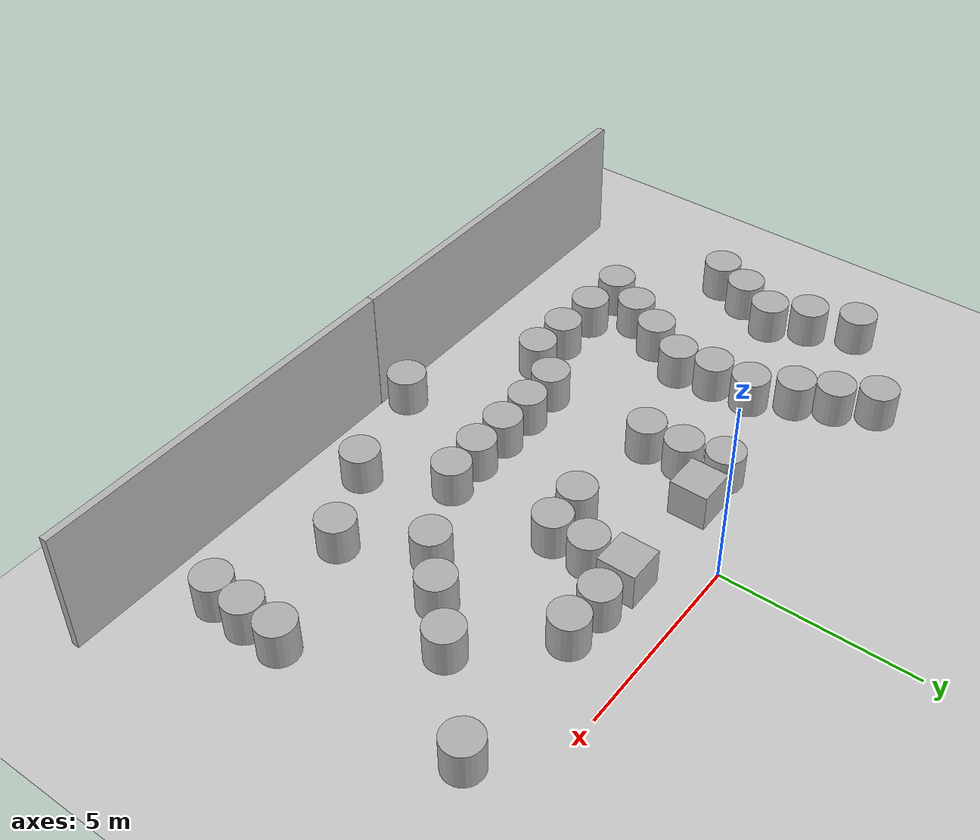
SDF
<sdf version="1.10">
 <world name="empty">
  <model name="ground_plane">
   <static>true</static>
   <link name="link">
    <collision name="collision">
     <geometry><plane><normal>0 0 1</normal><size>100 100</size></plane></geometry>
    </collision>
    <visual name="visual">
     <geometry><plane><normal>0 0 1</normal><size>100 100</size></plane></geometry>
     <material>
      <ambient>0.800000012 0.800000012 0.800000012 1</ambient>
      <diffuse>0.800000012 0.800000012 0.800000012 1</diffuse>
      <specular>0.800000012 0.800000012 0.800000012 1</specular>
     </material>
    </visual>
    <inertial>
     <mass>1</mass>
     <inertia><ixx>1</ixx><ixy>0</ixy><ixz>0</ixz><iyy>1</iyy><iyz>0</iyz><izz>1</izz></inertia>
    </inertial>
   </link>
  </model>
  <model name="cutout_wall">
   <static>true</static>
   <link name="link">
    <pose>0 0 1.3999999999999999 0 0 0</pose>
    <collision name="collision">
     <geometry><box><size>10 0.20000000000000001 3.7999999999999998</size></box></geometry>
     <surface>
      <contact>
       <collide_without_contact>true</collide_without_contact>
       <collide_without_contact_bitmask>2</collide_without_contact_bitmask>
      </contact>
     </surface>
    </collision>
    <visual name="visual">
     <cast_shadows>false</cast_shadows>
     <geometry><box><size>10 0.20000000000000001 3.7999999999999998</size></box></geometry>
     <material>
      <script>
       <uri>https://fuel.gazebosim.org/1.0/openrobotics/models/cutout wall/2/files/materials/scripts</uri>
       <uri>https://fuel.gazebosim.org/1.0/openrobotics/models/cutout wall/2/files/materials/textures</uri>
       <name>drc_practice/cutout_wall</name>
      </script>
     </material>
    </visual>
    <sensor name="mud_contact" type="contact">
     <always_on>true</always_on>
     <update_rate>1000</update_rate>
     <contact><collision>collision</collision><topic>__default_topic__</topic></contact>
    </sensor>
    <inertial>
     <mass>1</mass>
     <inertia><ixx>1</ixx><ixy>0</ixy><ixz>0</ixz><iyy>1</iyy><iyz>0</iyz><izz>1</izz></inertia>
    </inertial>
   </link>
   <plugin name="gazebo_mud" filename="libMudPlugin.so">
    <contact_sensor_name>link/mud_contact</contact_sensor_name>
    <stiffness>0.0</stiffness>
    <damping>40.0</damping>
    <contact_surface_bitmask>2</contact_surface_bitmask>
    <link_name>drill::link</link_name>
   </plugin>
   <pose>5.0244002342224121 -10.112856864929199 0 0 0 0</pose>
  </model>
  <model name="cutout_wall_0">
   <static>true</static>
   <link name="link">
    <pose>0 0 1.3999999999999999 0 0 0</pose>
    <collision name="collision">
     <geometry><box><size>10 0.20000000000000001 3.7999999999999998</size></box></geometry>
     <surface>
      <contact>
       <collide_without_contact>true</collide_without_contact>
       <collide_without_contact_bitmask>2</collide_without_contact_bitmask>
      </contact>
     </surface>
    </collision>
    <visual name="visual">
     <cast_shadows>false</cast_shadows>
     <geometry><box><size>10 0.20000000000000001 3.7999999999999998</size></box></geometry>
     <material>
      <script>
       <uri>https://fuel.gazebosim.org/1.0/openrobotics/models/cutout wall/2/files/materials/scripts</uri>
       <uri>https://fuel.gazebosim.org/1.0/openrobotics/models/cutout wall/2/files/materials/textures</uri>
       <name>drc_practice/cutout_wall</name>
      </script>
     </material>
    </visual>
    <sensor name="mud_contact" type="contact">
     <always_on>true</always_on>
     <update_rate>1000</update_rate>
     <contact><collision>collision</collision><topic>__default_topic__</topic></contact>
    </sensor>
    <inertial>
     <mass>1</mass>
     <inertia><ixx>1</ixx><ixy>0</ixy><ixz>0</ixz><iyy>1</iyy><iyz>0</iyz><izz>1</izz></inertia>
    </inertial>
   </link>
   <plugin name="gazebo_mud" filename="libMudPlugin.so">
    <contact_sensor_name>link/mud_contact</contact_sensor_name>
    <stiffness>0.0</stiffness>
    <damping>40.0</damping>
    <contact_surface_bitmask>2</contact_surface_bitmask>
    <link_name>drill::link</link_name>
   </plugin>
   <pose>-4.9628870537703635 -10.110187173626739 0 0 0 0</pose>
  </model>
  <model name="box_1">
   <pose>1.4997400045394897 -1.5082093477249146 0.49999999990199806 1.1517320518191673e-20 -1.1977566054568141e-20 -1.0673802548937443e-22</pose>
   <link name="box_link">
    <inertial>
     <inertia><ixx>0.16666</ixx><ixy>0</ixy><ixz>0</ixz><iyy>0.16666</iyy><iyz>0</iyz><izz>0.16666</izz></inertia>
     <mass>1</mass>
    </inertial>
    <collision name="box_collision"><geometry><box><size>1 1 1</size></box></geometry></collision>
    <visual name="box_visual">
     <geometry><box><size>1 1 1</size></box></geometry>
     <material>
      <ambient>0.300000012 0.300000012 0.300000012 1</ambient>
      <diffuse>0.699999988 0.699999988 0.699999988 1</diffuse>
      <specular>1 1 1 1</specular>
     </material>
    </visual>
   </link>
   <static>false</static>
  </model>
  <model name="box_2">
   <pose>-1.5103000402450562 -1.5050537586212158 0.49999999990199806 4.9253351279714187e-21 -3.9229219127948056e-21 -1.1103967100794144e-21</pose>
   <link name="box_link">
    <inertial>
     <inertia><ixx>0.16666</ixx><ixy>0</ixy><ixz>0</ixz><iyy>0.16666</iyy><iyz>0</iyz><izz>0.16666</izz></inertia>
     <mass>1</mass>
    </inertial>
    <collision name="box_collision"><geometry><box><size>1 1 1</size></box></geometry></collision>
    <visual name="box_visual">
     <geometry><box><size>1 1 1</size></box></geometry>
     <material>
      <ambient>0.300000012 0.300000012 0.300000012 1</ambient>
      <diffuse>0.699999988 0.699999988 0.699999988 1</diffuse>
      <specular>1 1 1 1</specular>
     </material>
    </visual>
   </link>
   <static>false</static>
  </model>
  <model name="cylinder_24">
   <pose>7.4579679743214129 -1.4635169595611899 0.49999942638036005 1.0404121543791637e-19 3.6597615079895941e-20 1.8234863927649828e-20</pose>
   <link name="cylinder_link">
    <inertial>
     <inertia>
      <ixx>0.14580000000000001</ixx>
      <ixy>0</ixy>
      <ixz>0</ixz>
      <iyy>0.14580000000000001</iyy>
      <iyz>0</iyz>
      <izz>0.125</izz>
     </inertia>
     <mass>1</mass>
    </inertial>
    <collision name="cylinder_collision">
     <geometry><cylinder><radius>0.5</radius><length>1</length></cylinder></geometry>
    </collision>
    <visual name="cylinder_visual">
     <geometry><cylinder><radius>0.5</radius><length>1</length></cylinder></geometry>
     <material>
      <ambient>0.300000012 0.300000012 0.300000012 1</ambient>
      <diffuse>0.699999988 0.699999988 0.699999988 1</diffuse>
      <specular>1 1 1 1</specular>
     </material>
    </visual>
   </link>
   <static>false</static>
  </model>
  <model name="cylinder_25">
   <pose>5.5018903763678519 -3.4989337276191517 0.49999942638036005 1.4860132144114843e-19 1.7661039450246635e-19 4.0893450691587339e-21</pose>
   <link name="cylinder_link">
    <inertial>
     <inertia>
      <ixx>0.14580000000000001</ixx>
      <ixy>0</ixy>
      <ixz>0</ixz>
      <iyy>0.14580000000000001</iyy>
      <iyz>0</iyz>
      <izz>0.125</izz>
     </inertia>
     <mass>1</mass>
    </inertial>
    <collision name="cylinder_collision">
     <geometry><cylinder><radius>0.5</radius><length>1</length></cylinder></geometry>
    </collision>
    <visual name="cylinder_visual">
     <geometry><cylinder><radius>0.5</radius><length>1</length></cylinder></geometry>
     <material>
      <ambient>0.300000012 0.300000012 0.300000012 1</ambient>
      <diffuse>0.699999988 0.699999988 0.699999988 1</diffuse>
      <specular>1 1 1 1</specular>
     </material>
    </visual>
   </link>
   <static>false</static>
  </model>
  <model name="cylinder_26">
   <pose>7.4913997650146484 -6.4739174842834473 0.49999899681693183 -1.6107873630028886e-19 -1.3158036878917675e-19 -6.9647624872487262e-21</pose>
   <link name="cylinder_link">
    <inertial>
     <inertia>
      <ixx>0.14580000000000001</ixx>
      <ixy>0</ixy>
      <ixz>0</ixz>
      <iyy>0.14580000000000001</iyy>
      <iyz>0</iyz>
      <izz>0.125</izz>
     </inertia>
     <mass>1</mass>
    </inertial>
    <collision name="cylinder_collision">
     <geometry><cylinder><radius>0.5</radius><length>1</length></cylinder></geometry>
    </collision>
    <visual name="cylinder_visual">
     <geometry><cylinder><radius>0.5</radius><length>1</length></cylinder></geometry>
     <material>
      <ambient>0.300000012 0.300000012 0.300000012 1</ambient>
      <diffuse>0.699999988 0.699999988 0.699999988 1</diffuse>
      <specular>1 1 1 1</specular>
     </material>
    </visual>
   </link>
   <static>false</static>
  </model>
  <model name="cylinder_27">
   <pose>4.5036947868113426 -7.4734161285770995 0.49999942638036005 4.5825536641846892e-19 -7.7492820516809437e-20 7.7745020133747469e-21</pose>
   <link name="cylinder_link">
    <inertial>
     <inertia>
      <ixx>0.14580000000000001</ixx>
      <ixy>0</ixy>
      <ixz>0</ixz>
      <iyy>0.14580000000000001</iyy>
      <iyz>0</iyz>
      <izz>0.125</izz>
     </inertia>
     <mass>1</mass>
    </inertial>
    <collision name="cylinder_collision">
     <geometry><cylinder><radius>0.5</radius><length>1</length></cylinder></geometry>
    </collision>
    <visual name="cylinder_visual">
     <geometry><cylinder><radius>0.5</radius><length>1</length></cylinder></geometry>
     <material>
      <ambient>0.300000012 0.300000012 0.300000012 1</ambient>
      <diffuse>0.699999988 0.699999988 0.699999988 1</diffuse>
      <specular>1 1 1 1</specular>
     </material>
    </visual>
   </link>
   <static>false</static>
  </model>
  <model name="cylinder_28">
   <pose>7.404863327792464 -8.4644145675349485 0.49999997297122245 -3.5262700033126905e-07 1.4435802526447565e-07 0.00094128847841023924</pose>
   <link name="cylinder_link">
    <inertial>
     <inertia>
      <ixx>0.14580000000000001</ixx>
      <ixy>0</ixy>
      <ixz>0</ixz>
      <iyy>0.14580000000000001</iyy>
      <iyz>0</iyz>
      <izz>0.125</izz>
     </inertia>
     <mass>1</mass>
    </inertial>
    <collision name="cylinder_collision">
     <geometry><cylinder><radius>0.5</radius><length>1</length></cylinder></geometry>
    </collision>
    <visual name="cylinder_visual">
     <geometry><cylinder><radius>0.5</radius><length>1</length></cylinder></geometry>
     <material>
      <ambient>0.300000012 0.300000012 0.300000012 1</ambient>
      <diffuse>0.699999988 0.699999988 0.699999988 1</diffuse>
      <specular>1 1 1 1</specular>
     </material>
    </visual>
   </link>
   <static>false</static>
  </model>
  <model name="cylinder_29">
   <pose>7.4653034075764992 -7.4820488905984313 0.49999414175929674 -2.6838842488045363e-06 -4.6486356529296626e-07 0.0016932280995456796</pose>
   <link name="cylinder_link">
    <inertial>
     <inertia>
      <ixx>0.14580000000000001</ixx>
      <ixy>0</ixy>
      <ixz>0</ixz>
      <iyy>0.14580000000000001</iyy>
      <iyz>0</iyz>
      <izz>0.125</izz>
     </inertia>
     <mass>1</mass>
    </inertial>
    <collision name="cylinder_collision">
     <geometry><cylinder><radius>0.5</radius><length>1</length></cylinder></geometry>
    </collision>
    <visual name="cylinder_visual">
     <geometry><cylinder><radius>0.5</radius><length>1</length></cylinder></geometry>
     <material>
      <ambient>0.300000012 0.300000012 0.300000012 1</ambient>
      <diffuse>0.699999988 0.699999988 0.699999988 1</diffuse>
      <specular>1 1 1 1</specular>
     </material>
    </visual>
   </link>
   <static>false</static>
  </model>
  <model name="cylinder_30">
   <pose>3.5181975875642597 -5.4882700601763243 0.49999942638036005 -9.0263386896251064e-20 1.227965443005862e-19 -6.4139063919702918e-21</pose>
   <link name="cylinder_link">
    <inertial>
     <inertia>
      <ixx>0.14580000000000001</ixx>
      <ixy>0</ixy>
      <ixz>0</ixz>
      <iyy>0.14580000000000001</iyy>
      <iyz>0</iyz>
      <izz>0.125</izz>
     </inertia>
     <mass>1</mass>
    </inertial>
    <collision name="cylinder_collision">
     <geometry><cylinder><radius>0.5</radius><length>1</length></cylinder></geometry>
    </collision>
    <visual name="cylinder_visual">
     <geometry><cylinder><radius>0.5</radius><length>1</length></cylinder></geometry>
     <material>
      <ambient>0.300000012 0.300000012 0.300000012 1</ambient>
      <diffuse>0.699999988 0.699999988 0.699999988 1</diffuse>
      <specular>1 1 1 1</specular>
     </material>
    </visual>
   </link>
   <static>false</static>
  </model>
  <model name="cylinder_31">
   <pose>2.4567228461091841 -8.5414870793526454 0.49999942638036005 2.5504988768588672e-19 6.5733350619232242e-20 -5.8407872868714071e-21</pose>
   <link name="cylinder_link">
    <inertial>
     <inertia>
      <ixx>0.14580000000000001</ixx>
      <ixy>0</ixy>
      <ixz>0</ixz>
      <iyy>0.14580000000000001</iyy>
      <iyz>0</iyz>
      <izz>0.125</izz>
     </inertia>
     <mass>1</mass>
    </inertial>
    <collision name="cylinder_collision">
     <geometry><cylinder><radius>0.5</radius><length>1</length></cylinder></geometry>
    </collision>
    <visual name="cylinder_visual">
     <geometry><cylinder><radius>0.5</radius><length>1</length></cylinder></geometry>
     <material>
      <ambient>0.300000012 0.300000012 0.300000012 1</ambient>
      <diffuse>0.699999988 0.699999988 0.699999988 1</diffuse>
      <specular>1 1 1 1</specular>
     </material>
    </visual>
   </link>
   <static>false</static>
  </model>
  <model name="cylinder_32">
   <pose>1.4836808308464846 -6.5152958040956168 0.49999942638036005 1.8706455609397484e-19 -4.394916380758869e-19 6.1073173625950871e-21</pose>
   <link name="cylinder_link">
    <inertial>
     <inertia>
      <ixx>0.14580000000000001</ixx>
      <ixy>0</ixy>
      <ixz>0</ixz>
      <iyy>0.14580000000000001</iyy>
      <iyz>0</iyz>
      <izz>0.125</izz>
     </inertia>
     <mass>1</mass>
    </inertial>
    <collision name="cylinder_collision">
     <geometry><cylinder><radius>0.5</radius><length>1</length></cylinder></geometry>
    </collision>
    <visual name="cylinder_visual">
     <geometry><cylinder><radius>0.5</radius><length>1</length></cylinder></geometry>
     <material>
      <ambient>0.300000012 0.300000012 0.300000012 1</ambient>
      <diffuse>0.699999988 0.699999988 0.699999988 1</diffuse>
      <specular>1 1 1 1</specular>
     </material>
    </visual>
   </link>
   <static>false</static>
  </model>
  <model name="cylinder_33">
   <pose>1.4988005276540712 -2.5632170485841277 0.49999942638036005 1.1352717714565005e-19 1.3222497010475083e-19 1.2599571809446981e-20</pose>
   <link name="cylinder_link">
    <inertial>
     <inertia>
      <ixx>0.14580000000000001</ixx>
      <ixy>0</ixy>
      <ixz>0</ixz>
      <iyy>0.14580000000000001</iyy>
      <iyz>0</iyz>
      <izz>0.125</izz>
     </inertia>
     <mass>1</mass>
    </inertial>
    <collision name="cylinder_collision">
     <geometry><cylinder><radius>0.5</radius><length>1</length></cylinder></geometry>
    </collision>
    <visual name="cylinder_visual">
     <geometry><cylinder><radius>0.5</radius><length>1</length></cylinder></geometry>
     <material>
      <ambient>0.300000012 0.300000012 0.300000012 1</ambient>
      <diffuse>0.699999988 0.699999988 0.699999988 1</diffuse>
      <specular>1 1 1 1</specular>
     </material>
    </visual>
   </link>
   <static>false</static>
  </model>
  <model name="cylinder_34">
   <pose>2.5982537141017641 -1.5151636730561524 0.49999942638036005 -1.7351388523841535e-19 5.5625022594761692e-20 -2.5965143220246563e-21</pose>
   <link name="cylinder_link">
    <inertial>
     <inertia>
      <ixx>0.14580000000000001</ixx>
      <ixy>0</ixy>
      <ixz>0</ixz>
      <iyy>0.14580000000000001</iyy>
      <iyz>0</iyz>
      <izz>0.125</izz>
     </inertia>
     <mass>1</mass>
    </inertial>
    <collision name="cylinder_collision">
     <geometry><cylinder><radius>0.5</radius><length>1</length></cylinder></geometry>
    </collision>
    <visual name="cylinder_visual">
     <geometry><cylinder><radius>0.5</radius><length>1</length></cylinder></geometry>
     <material>
      <ambient>0.300000012 0.300000012 0.300000012 1</ambient>
      <diffuse>0.699999988 0.699999988 0.699999988 1</diffuse>
      <specular>1 1 1 1</specular>
     </material>
    </visual>
   </link>
   <static>false</static>
  </model>
  <model name="cylinder_35">
   <pose>3.6352396272639154 -1.5871415900589758 0.49999942638036005 2.7912113488755255e-19 2.3054390331751714e-19 -1.371123595140014e-20</pose>
   <link name="cylinder_link">
    <inertial>
     <inertia>
      <ixx>0.14580000000000001</ixx>
      <ixy>0</ixy>
      <ixz>0</ixz>
      <iyy>0.14580000000000001</iyy>
      <iyz>0</iyz>
      <izz>0.125</izz>
     </inertia>
     <mass>1</mass>
    </inertial>
    <collision name="cylinder_collision">
     <geometry><cylinder><radius>0.5</radius><length>1</length></cylinder></geometry>
    </collision>
    <visual name="cylinder_visual">
     <geometry><cylinder><radius>0.5</radius><length>1</length></cylinder></geometry>
     <material>
      <ambient>0.300000012 0.300000012 0.300000012 1</ambient>
      <diffuse>0.699999988 0.699999988 0.699999988 1</diffuse>
      <specular>1 1 1 1</specular>
     </material>
    </visual>
   </link>
   <static>false</static>
  </model>
  <model name="cylinder_36">
   <pose>4.4832683135535412 -4.5509423094535553 0.49999942638036005 7.2649451183577797e-20 -4.8473965762629511e-20 7.0300260481472819e-21</pose>
   <link name="cylinder_link">
    <inertial>
     <inertia>
      <ixx>0.14580000000000001</ixx>
      <ixy>0</ixy>
      <ixz>0</ixz>
      <iyy>0.14580000000000001</iyy>
      <iyz>0</iyz>
      <izz>0.125</izz>
     </inertia>
     <mass>1</mass>
    </inertial>
    <collision name="cylinder_collision">
     <geometry><cylinder><radius>0.5</radius><length>1</length></cylinder></geometry>
    </collision>
    <visual name="cylinder_visual">
     <geometry><cylinder><radius>0.5</radius><length>1</length></cylinder></geometry>
     <material>
      <ambient>0.300000012 0.300000012 0.300000012 1</ambient>
      <diffuse>0.699999988 0.699999988 0.699999988 1</diffuse>
      <specular>1 1 1 1</specular>
     </material>
    </visual>
   </link>
   <static>false</static>
  </model>
  <model name="cylinder_37">
   <pose>1.4318604379295714 -3.6028194224507994 0.49999942638036005 7.4099042318196404e-20 5.5378451692048979e-20 -1.2954720819263041e-20</pose>
   <link name="cylinder_link">
    <inertial>
     <inertia>
      <ixx>0.14580000000000001</ixx>
      <ixy>0</ixy>
      <ixz>0</ixz>
      <iyy>0.14580000000000001</iyy>
      <iyz>0</iyz>
      <izz>0.125</izz>
     </inertia>
     <mass>1</mass>
    </inertial>
    <collision name="cylinder_collision">
     <geometry><cylinder><radius>0.5</radius><length>1</length></cylinder></geometry>
    </collision>
    <visual name="cylinder_visual">
     <geometry><cylinder><radius>0.5</radius><length>1</length></cylinder></geometry>
     <material>
      <ambient>0.300000012 0.300000012 0.300000012 1</ambient>
      <diffuse>0.699999988 0.699999988 0.699999988 1</diffuse>
      <specular>1 1 1 1</specular>
     </material>
    </visual>
   </link>
   <static>false</static>
  </model>
  <model name="cylinder_38">
   <pose>0.4701120445519768 -6.5480743106443633 0.49999942638036005 4.1439297792588681e-19 4.8641858540403024e-19 2.7303903312444181e-20</pose>
   <link name="cylinder_link">
    <inertial>
     <inertia>
      <ixx>0.14580000000000001</ixx>
      <ixy>0</ixy>
      <ixz>0</ixz>
      <iyy>0.14580000000000001</iyy>
      <iyz>0</iyz>
      <izz>0.125</izz>
     </inertia>
     <mass>1</mass>
    </inertial>
    <collision name="cylinder_collision">
     <geometry><cylinder><radius>0.5</radius><length>1</length></cylinder></geometry>
    </collision>
    <visual name="cylinder_visual">
     <geometry><cylinder><radius>0.5</radius><length>1</length></cylinder></geometry>
     <material>
      <ambient>0.300000012 0.300000012 0.300000012 1</ambient>
      <diffuse>0.699999988 0.699999988 0.699999988 1</diffuse>
      <specular>1 1 1 1</specular>
     </material>
    </visual>
   </link>
   <static>false</static>
  </model>
  <model name="cylinder_39">
   <pose>-0.39289321029540758 -9.4703206059036553 0.49999942638036005 -1.0612329675700295e-19 -3.1560568702048225e-19 6.0230042435980867e-21</pose>
   <link name="cylinder_link">
    <inertial>
     <inertia>
      <ixx>0.14580000000000001</ixx>
      <ixy>0</ixy>
      <ixz>0</ixz>
      <iyy>0.14580000000000001</iyy>
      <iyz>0</iyz>
      <izz>0.125</izz>
     </inertia>
     <mass>1</mass>
    </inertial>
    <collision name="cylinder_collision">
     <geometry><cylinder><radius>0.5</radius><length>1</length></cylinder></geometry>
    </collision>
    <visual name="cylinder_visual">
     <geometry><cylinder><radius>0.5</radius><length>1</length></cylinder></geometry>
     <material>
      <ambient>0.300000012 0.300000012 0.300000012 1</ambient>
      <diffuse>0.699999988 0.699999988 0.699999988 1</diffuse>
      <specular>1 1 1 1</specular>
     </material>
    </visual>
   </link>
   <static>false</static>
  </model>
  <model name="cylinder_40">
   <pose>-0.55864247399234923 -6.5343551494490271 0.49999942638036005 4.0541481752841836e-19 -1.7716716103474124e-19 -8.9936384247304861e-21</pose>
   <link name="cylinder_link">
    <inertial>
     <inertia>
      <ixx>0.14580000000000001</ixx>
      <ixy>0</ixy>
      <ixz>0</ixz>
      <iyy>0.14580000000000001</iyy>
      <iyz>0</iyz>
      <izz>0.125</izz>
     </inertia>
     <mass>1</mass>
    </inertial>
    <collision name="cylinder_collision">
     <geometry><cylinder><radius>0.5</radius><length>1</length></cylinder></geometry>
    </collision>
    <visual name="cylinder_visual">
     <geometry><cylinder><radius>0.5</radius><length>1</length></cylinder></geometry>
     <material>
      <ambient>0.300000012 0.300000012 0.300000012 1</ambient>
      <diffuse>0.699999988 0.699999988 0.699999988 1</diffuse>
      <specular>1 1 1 1</specular>
     </material>
    </visual>
   </link>
   <static>false</static>
  </model>
  <model name="cylinder_41">
   <pose>-1.5909876523756719 -6.549522709019417 0.49999942638036005 -2.723644736422706e-19 -4.2175234747128296e-20 1.0337401582250631e-20</pose>
   <link name="cylinder_link">
    <inertial>
     <inertia>
      <ixx>0.14580000000000001</ixx>
      <ixy>0</ixy>
      <ixz>0</ixz>
      <iyy>0.14580000000000001</iyy>
      <iyz>0</iyz>
      <izz>0.125</izz>
     </inertia>
     <mass>1</mass>
    </inertial>
    <collision name="cylinder_collision">
     <geometry><cylinder><radius>0.5</radius><length>1</length></cylinder></geometry>
    </collision>
    <visual name="cylinder_visual">
     <geometry><cylinder><radius>0.5</radius><length>1</length></cylinder></geometry>
     <material>
      <ambient>0.300000012 0.300000012 0.300000012 1</ambient>
      <diffuse>0.699999988 0.699999988 0.699999988 1</diffuse>
      <specular>1 1 1 1</specular>
     </material>
    </visual>
   </link>
   <static>false</static>
  </model>
  <model name="cylinder_42">
   <pose>-2.6606234614555997 -6.604773553741321 0.49999942638036005 2.7798991432306755e-19 -2.6032469691397042e-19 2.1424046912927031e-20</pose>
   <link name="cylinder_link">
    <inertial>
     <inertia>
      <ixx>0.14580000000000001</ixx>
      <ixy>0</ixy>
      <ixz>0</ixz>
      <iyy>0.14580000000000001</iyy>
      <iyz>0</iyz>
      <izz>0.125</izz>
     </inertia>
     <mass>1</mass>
    </inertial>
    <collision name="cylinder_collision">
     <geometry><cylinder><radius>0.5</radius><length>1</length></cylinder></geometry>
    </collision>
    <visual name="cylinder_visual">
     <geometry><cylinder><radius>0.5</radius><length>1</length></cylinder></geometry>
     <material>
      <ambient>0.300000012 0.300000012 0.300000012 1</ambient>
      <diffuse>0.699999988 0.699999988 0.699999988 1</diffuse>
      <specular>1 1 1 1</specular>
     </material>
    </visual>
   </link>
   <static>false</static>
  </model>
  <model name="cylinder_43">
   <pose>-3.4618544785568299 -7.5837527019556656 0.49999942638036005 1.420435048148452e-19 -8.7965788570413045e-20 1.8581114252052647e-20</pose>
   <link name="cylinder_link">
    <inertial>
     <inertia>
      <ixx>0.14580000000000001</ixx>
      <ixy>0</ixy>
      <ixz>0</ixz>
      <iyy>0.14580000000000001</iyy>
      <iyz>0</iyz>
      <izz>0.125</izz>
     </inertia>
     <mass>1</mass>
    </inertial>
    <collision name="cylinder_collision">
     <geometry><cylinder><radius>0.5</radius><length>1</length></cylinder></geometry>
    </collision>
    <visual name="cylinder_visual">
     <geometry><cylinder><radius>0.5</radius><length>1</length></cylinder></geometry>
     <material>
      <ambient>0.300000012 0.300000012 0.300000012 1</ambient>
      <diffuse>0.699999988 0.699999988 0.699999988 1</diffuse>
      <specular>1 1 1 1</specular>
     </material>
    </visual>
   </link>
   <static>false</static>
  </model>
  <model name="cylinder_45">
   <pose>-7.0212748879467828 -7.4850845913170003 0.49999942638036005 -2.4974064668848351e-19 -4.4274681889498242e-19 -1.5337513425931116e-20</pose>
   <link name="cylinder_link">
    <inertial>
     <inertia>
      <ixx>0.14580000000000001</ixx>
      <ixy>0</ixy>
      <ixz>0</ixz>
      <iyy>0.14580000000000001</iyy>
      <iyz>0</iyz>
      <izz>0.125</izz>
     </inertia>
     <mass>1</mass>
    </inertial>
    <collision name="cylinder_collision">
     <geometry><cylinder><radius>0.5</radius><length>1</length></cylinder></geometry>
    </collision>
    <visual name="cylinder_visual">
     <geometry><cylinder><radius>0.5</radius><length>1</length></cylinder></geometry>
     <material>
      <ambient>0.300000012 0.300000012 0.300000012 1</ambient>
      <diffuse>0.699999988 0.699999988 0.699999988 1</diffuse>
      <specular>1 1 1 1</specular>
     </material>
    </visual>
   </link>
   <static>false</static>
  </model>
  <model name="cylinder_46">
   <pose>-6.4831823274444051 -6.4902933339226037 0.49999942638036005 1.0849121461906336e-20 -2.3015827358014971e-19 1.7966367658804048e-20</pose>
   <link name="cylinder_link">
    <inertial>
     <inertia>
      <ixx>0.14580000000000001</ixx>
      <ixy>0</ixy>
      <ixz>0</ixz>
      <iyy>0.14580000000000001</iyy>
      <iyz>0</iyz>
      <izz>0.125</izz>
     </inertia>
     <mass>1</mass>
    </inertial>
    <collision name="cylinder_collision">
     <geometry><cylinder><radius>0.5</radius><length>1</length></cylinder></geometry>
    </collision>
    <visual name="cylinder_visual">
     <geometry><cylinder><radius>0.5</radius><length>1</length></cylinder></geometry>
     <material>
      <ambient>0.300000012 0.300000012 0.300000012 1</ambient>
      <diffuse>0.699999988 0.699999988 0.699999988 1</diffuse>
      <specular>1 1 1 1</specular>
     </material>
    </visual>
   </link>
   <static>false</static>
  </model>
  <model name="cylinder_47">
   <pose>-5.9747083424758198 -5.5289960858485703 0.49999942638036005 2.8374218245058555e-19 -1.7124587046990204e-19 -2.2958603872989259e-21</pose>
   <link name="cylinder_link">
    <inertial>
     <inertia>
      <ixx>0.14580000000000001</ixx>
      <ixy>0</ixy>
      <ixz>0</ixz>
      <iyy>0.14580000000000001</iyy>
      <iyz>0</iyz>
      <izz>0.125</izz>
     </inertia>
     <mass>1</mass>
    </inertial>
    <collision name="cylinder_collision">
     <geometry><cylinder><radius>0.5</radius><length>1</length></cylinder></geometry>
    </collision>
    <visual name="cylinder_visual">
     <geometry><cylinder><radius>0.5</radius><length>1</length></cylinder></geometry>
     <material>
      <ambient>0.300000012 0.300000012 0.300000012 1</ambient>
      <diffuse>0.699999988 0.699999988 0.699999988 1</diffuse>
      <specular>1 1 1 1</specular>
     </material>
    </visual>
   </link>
   <static>false</static>
  </model>
  <model name="cylinder_48">
   <pose>-5.3978418360782241 -4.4847166570824921 0.49999942638036005 2.1715975944437107e-19 1.2873219199035362e-19 -6.2910755448187662e-22</pose>
   <link name="cylinder_link">
    <inertial>
     <inertia>
      <ixx>0.14580000000000001</ixx>
      <ixy>0</ixy>
      <ixz>0</ixz>
      <iyy>0.14580000000000001</iyy>
      <iyz>0</iyz>
      <izz>0.125</izz>
     </inertia>
     <mass>1</mass>
    </inertial>
    <collision name="cylinder_collision">
     <geometry><cylinder><radius>0.5</radius><length>1</length></cylinder></geometry>
    </collision>
    <visual name="cylinder_visual">
     <geometry><cylinder><radius>0.5</radius><length>1</length></cylinder></geometry>
     <material>
      <ambient>0.300000012 0.300000012 0.300000012 1</ambient>
      <diffuse>0.699999988 0.699999988 0.699999988 1</diffuse>
      <specular>1 1 1 1</specular>
     </material>
    </visual>
   </link>
   <static>false</static>
  </model>
  <model name="cylinder_49">
   <pose>-5.4931843299034142 -3.4716258559820754 0.49999942638036005 2.4337212346531928e-19 2.4401324793732585e-19 1.7803625532772893e-20</pose>
   <link name="cylinder_link">
    <inertial>
     <inertia>
      <ixx>0.14580000000000001</ixx>
      <ixy>0</ixy>
      <ixz>0</ixz>
      <iyy>0.14580000000000001</iyy>
      <iyz>0</iyz>
      <izz>0.125</izz>
     </inertia>
     <mass>1</mass>
    </inertial>
    <collision name="cylinder_collision">
     <geometry><cylinder><radius>0.5</radius><length>1</length></cylinder></geometry>
    </collision>
    <visual name="cylinder_visual">
     <geometry><cylinder><radius>0.5</radius><length>1</length></cylinder></geometry>
     <material>
      <ambient>0.300000012 0.300000012 0.300000012 1</ambient>
      <diffuse>0.699999988 0.699999988 0.699999988 1</diffuse>
      <specular>1 1 1 1</specular>
     </material>
    </visual>
   </link>
   <static>false</static>
  </model>
  <model name="cylinder_50">
   <pose>-5.5395770966844147 -2.412764439411784 0.49999942638036005 -2.7182253611607713e-19 -4.8512266020786534e-21 -1.7735644133416127e-20</pose>
   <link name="cylinder_link">
    <inertial>
     <inertia>
      <ixx>0.14580000000000001</ixx>
      <ixy>0</ixy>
      <ixz>0</ixz>
      <iyy>0.14580000000000001</iyy>
      <iyz>0</iyz>
      <izz>0.125</izz>
     </inertia>
     <mass>1</mass>
    </inertial>
    <collision name="cylinder_collision">
     <geometry><cylinder><radius>0.5</radius><length>1</length></cylinder></geometry>
    </collision>
    <visual name="cylinder_visual">
     <geometry><cylinder><radius>0.5</radius><length>1</length></cylinder></geometry>
     <material>
      <ambient>0.300000012 0.300000012 0.300000012 1</ambient>
      <diffuse>0.699999988 0.699999988 0.699999988 1</diffuse>
      <specular>1 1 1 1</specular>
     </material>
    </visual>
   </link>
   <static>false</static>
  </model>
  <model name="cylinder_51">
   <pose>-6.0935793199029726 -1.4176121194494704 0.49999942627026939 -6.7310881130516709e-09 -2.9255352273936807e-09 -3.5201844377507852e-05</pose>
   <link name="cylinder_link">
    <inertial>
     <inertia>
      <ixx>0.14580000000000001</ixx>
      <ixy>0</ixy>
      <ixz>0</ixz>
      <iyy>0.14580000000000001</iyy>
      <iyz>0</iyz>
      <izz>0.125</izz>
     </inertia>
     <mass>1</mass>
    </inertial>
    <collision name="cylinder_collision">
     <geometry><cylinder><radius>0.5</radius><length>1</length></cylinder></geometry>
    </collision>
    <visual name="cylinder_visual">
     <geometry><cylinder><radius>0.5</radius><length>1</length></cylinder></geometry>
     <material>
      <ambient>0.300000012 0.300000012 0.300000012 1</ambient>
      <diffuse>0.699999988 0.699999988 0.699999988 1</diffuse>
      <specular>1 1 1 1</specular>
     </material>
    </visual>
   </link>
   <static>false</static>
  </model>
  <model name="cylinder_52">
   <pose>-6.5002052456049482 -0.50401719041729032 0.4999993712424709 2.4612618313232446e-07 9.834211334545456e-08 -3.0675675554964203e-05</pose>
   <link name="cylinder_link">
    <inertial>
     <inertia>
      <ixx>0.14580000000000001</ixx>
      <ixy>0</ixy>
      <ixz>0</ixz>
      <iyy>0.14580000000000001</iyy>
      <iyz>0</iyz>
      <izz>0.125</izz>
     </inertia>
     <mass>1</mass>
    </inertial>
    <collision name="cylinder_collision">
     <geometry><cylinder><radius>0.5</radius><length>1</length></cylinder></geometry>
    </collision>
    <visual name="cylinder_visual">
     <geometry><cylinder><radius>0.5</radius><length>1</length></cylinder></geometry>
     <material>
      <ambient>0.300000012 0.300000012 0.300000012 1</ambient>
      <diffuse>0.699999988 0.699999988 0.699999988 1</diffuse>
      <specular>1 1 1 1</specular>
     </material>
    </visual>
   </link>
   <static>false</static>
  </model>
  <model name="cylinder_53">
   <pose>-6.9901437766766437 0.44240667448760362 0.49999942638036005 1.3686495558641975e-19 2.9813842936144134e-19 1.2621506060326153e-20</pose>
   <link name="cylinder_link">
    <inertial>
     <inertia>
      <ixx>0.14580000000000001</ixx>
      <ixy>0</ixy>
      <ixz>0</ixz>
      <iyy>0.14580000000000001</iyy>
      <iyz>0</iyz>
      <izz>0.125</izz>
     </inertia>
     <mass>1</mass>
    </inertial>
    <collision name="cylinder_collision">
     <geometry><cylinder><radius>0.5</radius><length>1</length></cylinder></geometry>
    </collision>
    <visual name="cylinder_visual">
     <geometry><cylinder><radius>0.5</radius><length>1</length></cylinder></geometry>
     <material>
      <ambient>0.300000012 0.300000012 0.300000012 1</ambient>
      <diffuse>0.699999988 0.699999988 0.699999988 1</diffuse>
      <specular>1 1 1 1</specular>
     </material>
    </visual>
   </link>
   <static>false</static>
  </model>
  <model name="cylinder_55">
   <pose>-8.499150276184082 -3.5199000835418701 0.49999899681693183 -3.3616848093536634e-19 -2.1501004665388315e-20 -2.5564773849078708e-21</pose>
   <link name="cylinder_link">
    <inertial>
     <inertia>
      <ixx>0.14580000000000001</ixx>
      <ixy>0</ixy>
      <ixz>0</ixz>
      <iyy>0.14580000000000001</iyy>
      <iyz>0</iyz>
      <izz>0.125</izz>
     </inertia>
     <mass>1</mass>
    </inertial>
    <collision name="cylinder_collision">
     <geometry><cylinder><radius>0.5</radius><length>1</length></cylinder></geometry>
    </collision>
    <visual name="cylinder_visual">
     <geometry><cylinder><radius>0.5</radius><length>1</length></cylinder></geometry>
     <material>
      <ambient>0.300000012 0.300000012 0.300000012 1</ambient>
      <diffuse>0.699999988 0.699999988 0.699999988 1</diffuse>
      <specular>1 1 1 1</specular>
     </material>
    </visual>
   </link>
   <static>false</static>
  </model>
  <model name="cylinder_56">
   <pose>-8.9800365313737291 -2.5694455171423494 0.49999942638036005 3.5099960986593271e-19 5.967076795896145e-20 -7.5350668408738701e-21</pose>
   <link name="cylinder_link">
    <inertial>
     <inertia>
      <ixx>0.14580000000000001</ixx>
      <ixy>0</ixy>
      <ixz>0</ixz>
      <iyy>0.14580000000000001</iyy>
      <iyz>0</iyz>
      <izz>0.125</izz>
     </inertia>
     <mass>1</mass>
    </inertial>
    <collision name="cylinder_collision">
     <geometry><cylinder><radius>0.5</radius><length>1</length></cylinder></geometry>
    </collision>
    <visual name="cylinder_visual">
     <geometry><cylinder><radius>0.5</radius><length>1</length></cylinder></geometry>
     <material>
      <ambient>0.300000012 0.300000012 0.300000012 1</ambient>
      <diffuse>0.699999988 0.699999988 0.699999988 1</diffuse>
      <specular>1 1 1 1</specular>
     </material>
    </visual>
   </link>
   <static>false</static>
  </model>
  <model name="cylinder_57">
   <pose>-9.4320461858531353 -1.3701114270326711 0.49999942638036005 -2.4022051629321998e-19 -1.9756117261297617e-19 -1.7916873759873146e-20</pose>
   <link name="cylinder_link">
    <inertial>
     <inertia>
      <ixx>0.14580000000000001</ixx>
      <ixy>0</ixy>
      <ixz>0</ixz>
      <iyy>0.14580000000000001</iyy>
      <iyz>0</iyz>
      <izz>0.125</izz>
     </inertia>
     <mass>1</mass>
    </inertial>
    <collision name="cylinder_collision">
     <geometry><cylinder><radius>0.5</radius><length>1</length></cylinder></geometry>
    </collision>
    <visual name="cylinder_visual">
     <geometry><cylinder><radius>0.5</radius><length>1</length></cylinder></geometry>
     <material>
      <ambient>0.300000012 0.300000012 0.300000012 1</ambient>
      <diffuse>0.699999988 0.699999988 0.699999988 1</diffuse>
      <specular>1 1 1 1</specular>
     </material>
    </visual>
   </link>
   <static>false</static>
  </model>
  <model name="cylinder_58">
   <pose>-8.9747812109720471 -4.532834103576878 0.49999942638036005 1.3032951567794331e-20 2.7748825127612997e-19 -6.2019755290760544e-21</pose>
   <link name="cylinder_link">
    <inertial>
     <inertia>
      <ixx>0.14580000000000001</ixx>
      <ixy>0</ixy>
      <ixz>0</ixz>
      <iyy>0.14580000000000001</iyy>
      <iyz>0</iyz>
      <izz>0.125</izz>
     </inertia>
     <mass>1</mass>
    </inertial>
    <collision name="cylinder_collision">
     <geometry><cylinder><radius>0.5</radius><length>1</length></cylinder></geometry>
    </collision>
    <visual name="cylinder_visual">
     <geometry><cylinder><radius>0.5</radius><length>1</length></cylinder></geometry>
     <material>
      <ambient>0.300000012 0.300000012 0.300000012 1</ambient>
      <diffuse>0.699999988 0.699999988 0.699999988 1</diffuse>
      <specular>1 1 1 1</specular>
     </material>
    </visual>
   </link>
   <static>false</static>
  </model>
  <model name="cylinder_59">
   <pose>-9.3673534410758155 -5.4904917390304355 0.49999942638036005 -1.2445206698867774e-19 4.063162748192011e-20 1.4884172957499259e-20</pose>
   <link name="cylinder_link">
    <inertial>
     <inertia>
      <ixx>0.14580000000000001</ixx>
      <ixy>0</ixy>
      <ixz>0</ixz>
      <iyy>0.14580000000000001</iyy>
      <iyz>0</iyz>
      <izz>0.125</izz>
     </inertia>
     <mass>1</mass>
    </inertial>
    <collision name="cylinder_collision">
     <geometry><cylinder><radius>0.5</radius><length>1</length></cylinder></geometry>
    </collision>
    <visual name="cylinder_visual">
     <geometry><cylinder><radius>0.5</radius><length>1</length></cylinder></geometry>
     <material>
      <ambient>0.300000012 0.300000012 0.300000012 1</ambient>
      <diffuse>0.699999988 0.699999988 0.699999988 1</diffuse>
      <specular>1 1 1 1</specular>
     </material>
    </visual>
   </link>
   <static>false</static>
  </model>
  <model name="cylinder_44">
   <pose>-4.5541674090902937 -7.5559187257985325 0.49999942638036005 -2.8322458103917687e-19 2.7044851253798154e-19 -7.2613919401868332e-21</pose>
   <link name="cylinder_link">
    <inertial>
     <inertia>
      <ixx>0.14580000000000001</ixx>
      <ixy>0</ixy>
      <ixz>0</ixz>
      <iyy>0.14580000000000001</iyy>
      <iyz>0</iyz>
      <izz>0.125</izz>
     </inertia>
     <mass>1</mass>
    </inertial>
    <collision name="cylinder_collision">
     <geometry><cylinder><radius>0.5</radius><length>1</length></cylinder></geometry>
    </collision>
    <visual name="cylinder_visual">
     <geometry><cylinder><radius>0.5</radius><length>1</length></cylinder></geometry>
     <material>
      <ambient>0.300000012 0.300000012 0.300000012 1</ambient>
      <diffuse>0.699999988 0.699999988 0.699999988 1</diffuse>
      <specular>1 1 1 1</specular>
     </material>
    </visual>
   </link>
   <static>false</static>
  </model>
  <model name="cylinder_60">
   <pose>-5.7862413302155238 -7.5231569351546987 0.49999942638036005 3.3049680438904225e-19 -3.5159227830131655e-19 -1.3193741878212174e-20</pose>
   <link name="cylinder_link">
    <inertial>
     <inertia>
      <ixx>0.14580000000000001</ixx>
      <ixy>0</ixy>
      <ixz>0</ixz>
      <iyy>0.14580000000000001</iyy>
      <iyz>0</iyz>
      <izz>0.125</izz>
     </inertia>
     <mass>1</mass>
    </inertial>
    <collision name="cylinder_collision">
     <geometry><cylinder><radius>0.5</radius><length>1</length></cylinder></geometry>
    </collision>
    <visual name="cylinder_visual">
     <geometry><cylinder><radius>0.5</radius><length>1</length></cylinder></geometry>
     <material>
      <ambient>0.300000012 0.300000012 0.300000012 1</ambient>
      <diffuse>0.699999988 0.699999988 0.699999988 1</diffuse>
      <specular>1 1 1 1</specular>
     </material>
    </visual>
   </link>
   <static>false</static>
  </model>
  <model name="cylinder_67">
   <pose>0.38603283048199466 -3.6532821826130952 0.49999942638036005 5.2811689698660436e-19 1.5166349525734737e-19 -7.5139780902363024e-21</pose>
   <link name="cylinder_link">
    <inertial>
     <inertia>
      <ixx>0.14580000000000001</ixx>
      <ixy>0</ixy>
      <ixz>0</ixz>
      <iyy>0.14580000000000001</iyy>
      <iyz>0</iyz>
      <izz>0.125</izz>
     </inertia>
     <mass>1</mass>
    </inertial>
    <collision name="cylinder_collision">
     <geometry><cylinder><radius>0.5</radius><length>1</length></cylinder></geometry>
    </collision>
    <visual name="cylinder_visual">
     <geometry><cylinder><radius>0.5</radius><length>1</length></cylinder></geometry>
     <material>
      <ambient>0.300000012 0.300000012 0.300000012 1</ambient>
      <diffuse>0.699999988 0.699999988 0.699999988 1</diffuse>
      <specular>1 1 1 1</specular>
     </material>
    </visual>
   </link>
   <static>false</static>
  </model>
  <model name="cylinder_68">
   <pose>-2.4832552201374658 -2.5157181241968112 0.49999942638036005 9.9892277382675286e-20 2.2681215193712873e-19 -2.9266770418001746e-21</pose>
   <link name="cylinder_link">
    <inertial>
     <inertia>
      <ixx>0.14580000000000001</ixx>
      <ixy>0</ixy>
      <ixz>0</ixz>
      <iyy>0.14580000000000001</iyy>
      <iyz>0</iyz>
      <izz>0.125</izz>
     </inertia>
     <mass>1</mass>
    </inertial>
    <collision name="cylinder_collision">
     <geometry><cylinder><radius>0.5</radius><length>1</length></cylinder></geometry>
    </collision>
    <visual name="cylinder_visual">
     <geometry><cylinder><radius>0.5</radius><length>1</length></cylinder></geometry>
     <material>
      <ambient>0.300000012 0.300000012 0.300000012 1</ambient>
      <diffuse>0.699999988 0.699999988 0.699999988 1</diffuse>
      <specular>1 1 1 1</specular>
     </material>
    </visual>
   </link>
   <static>false</static>
  </model>
  <model name="cylinder_69">
   <pose>-2.4876000396474014 -3.5809971165869969 0.49999942638036005 3.4512757021165921e-19 -1.8531368843515718e-20 1.7468269303831284e-21</pose>
   <link name="cylinder_link">
    <inertial>
     <inertia>
      <ixx>0.14580000000000001</ixx>
      <ixy>0</ixy>
      <ixz>0</ixz>
      <iyy>0.14580000000000001</iyy>
      <iyz>0</iyz>
      <izz>0.125</izz>
     </inertia>
     <mass>1</mass>
    </inertial>
    <collision name="cylinder_collision">
     <geometry><cylinder><radius>0.5</radius><length>1</length></cylinder></geometry>
    </collision>
    <visual name="cylinder_visual">
     <geometry><cylinder><radius>0.5</radius><length>1</length></cylinder></geometry>
     <material>
      <ambient>0.300000012 0.300000012 0.300000012 1</ambient>
      <diffuse>0.699999988 0.699999988 0.699999988 1</diffuse>
      <specular>1 1 1 1</specular>
     </material>
    </visual>
   </link>
   <static>false</static>
  </model>
  <model name="cylinder_70">
   <pose>-2.7199714404812489 -1.4883568677585903 0.49999942638036005 9.7285672250459049e-20 1.8454771859506208e-19 -1.4700850407340709e-21</pose>
   <link name="cylinder_link">
    <inertial>
     <inertia>
      <ixx>0.14580000000000001</ixx>
      <ixy>0</ixy>
      <ixz>0</ixz>
      <iyy>0.14580000000000001</iyy>
      <iyz>0</iyz>
      <izz>0.125</izz>
     </inertia>
     <mass>1</mass>
    </inertial>
    <collision name="cylinder_collision">
     <geometry><cylinder><radius>0.5</radius><length>1</length></cylinder></geometry>
    </collision>
    <visual name="cylinder_visual">
     <geometry><cylinder><radius>0.5</radius><length>1</length></cylinder></geometry>
     <material>
      <ambient>0.300000012 0.300000012 0.300000012 1</ambient>
      <diffuse>0.699999988 0.699999988 0.699999988 1</diffuse>
      <specular>1 1 1 1</specular>
     </material>
    </visual>
   </link>
   <static>false</static>
  </model>
 </world>
</sdf>
